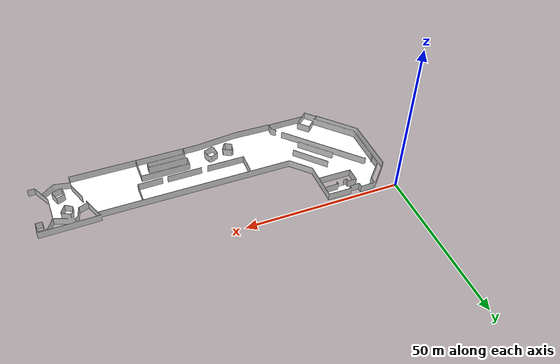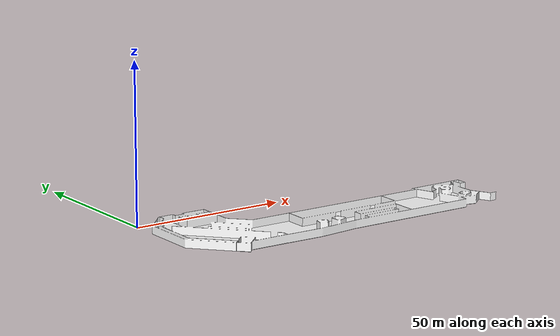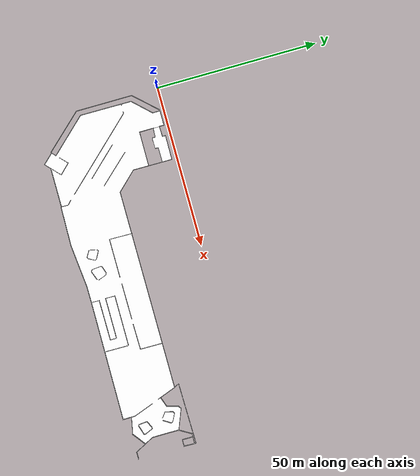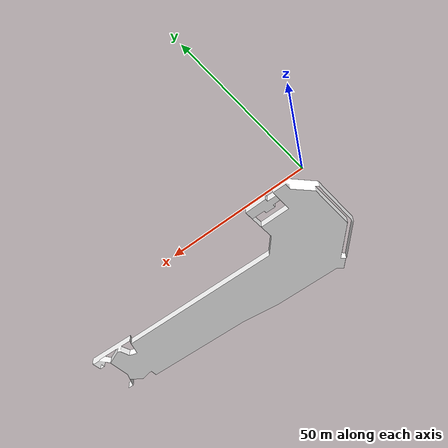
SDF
<?xml version='1.0' encoding='utf-8'?>
<sdf version="1.7">
  <model name="trl_TRL_L3">
    <static>true</static>
    <link name="floor_1">
      <visual name="visual">
        <geometry>
          <mesh>
            <uri>model://trl_TRL_L3/meshes/floor_1.obj</uri>
          </mesh>
        </geometry>
        <material>
          <diffuse>1.0 1.0 1.0</diffuse>
          <specular>0.1 0.1 0.1</specular>
          <pbr>
            <metal>
              <metalness>0.0</metalness>
              <albedo_map>model://trl_TRL_L3/meshes/blue_linoleum.png</albedo_map>
            </metal>
          </pbr>
          <script>
            <uri>model://trl_TRL_L3/meshes/</uri>
            <name>floor_1_Diffuse</name>
          </script>
        </material>
      </visual>
      <collision name="collision">
        <geometry>
          <mesh>
            <uri>model://trl_TRL_L3/meshes/floor_1.obj</uri>
          </mesh>
        </geometry>
        <surface>
          <contact>
            <collide_bitmask>0x01</collide_bitmask>
          </contact>
        </surface>
      </collision>
    </link>
    <link name="floor_2">
      <visual name="visual">
        <geometry>
          <mesh>
            <uri>model://trl_TRL_L3/meshes/floor_2.obj</uri>
          </mesh>
        </geometry>
        <material>
          <diffuse>1.0 1.0 1.0</diffuse>
          <specular>0.1 0.1 0.1</specular>
          <pbr>
            <metal>
              <metalness>0.0</metalness>
              <albedo_map>model://trl_TRL_L3/meshes/blue_linoleum.png</albedo_map>
            </metal>
          </pbr>
          <script>
            <uri>model://trl_TRL_L3/meshes/</uri>
            <name>floor_2_Diffuse</name>
          </script>
        </material>
      </visual>
      <collision name="collision">
        <geometry>
          <mesh>
            <uri>model://trl_TRL_L3/meshes/floor_2.obj</uri>
          </mesh>
        </geometry>
        <surface>
          <contact>
            <collide_bitmask>0x01</collide_bitmask>
          </contact>
        </surface>
      </collision>
    </link>
    <link name="wall_1">
      <visual name="wall_1">
        <geometry>
          <mesh>
            <uri>model://trl_TRL_L3/meshes/wall_1.obj</uri>
          </mesh>
        </geometry>
        <transparency>0.0</transparency>
        <material>
          <diffuse>1.0 1.0 1.0</diffuse>
          <specular>0.1 0.1 0.1</specular>
          <pbr>
            <metal>
              <metalness>0.0</metalness>
              <albedo_map>model://trl_TRL_L3/meshes/default.png</albedo_map>
            </metal>
          </pbr>
          <script>
            <uri>model://trl_TRL_L3/meshes/</uri>
            <name>wall_1_Diffuse</name>
          </script>
        </material>
      </visual>
      <collision name="collision">
        <geometry>
          <mesh>
            <uri>model://trl_TRL_L3/meshes/wall_1.obj</uri>
          </mesh>
        </geometry>
        <surface>
          <contact>
            <collide_bitmask>0x01</collide_bitmask>
          </contact>
        </surface>
      </collision>
      <pose>0.15812572523506363 -39.51981680392871 0 0 0 0</pose>
    </link>
  </model>
</sdf>
